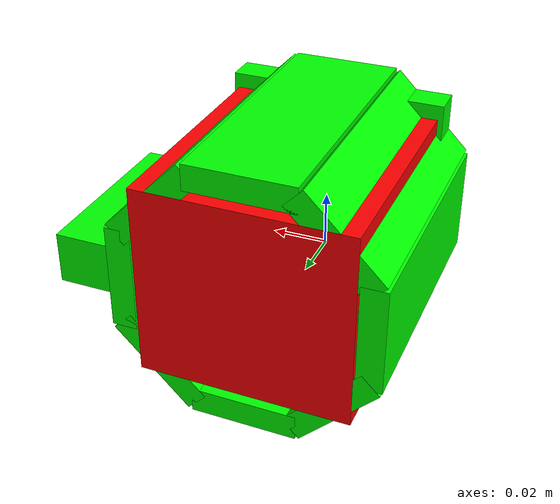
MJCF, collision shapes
<mujoco model="Mug_1">
  <compiler angle="radian" />
  <default>
    <default class="/">
      <default class="__VISUAL_MJT__">
        <geom contype="0" conaffinity="0" mass="0" />
      </default>
      <default class="__STRUCTURAL_MJT__">
        <geom contype="8" conaffinity="15" group="4" friction="0.9 0.9 0.001" solref="0.025" solimp="0.998 0.998" />
      </default>
      <default class="__DYNAMIC_MJT__">
        <geom conaffinity="15" group="4" friction="0.9 0.9 0.001" solref="0.025" solimp="0.998 0.998" />
      </default>
    </default>
  </default>
  <asset>
    <material name="material_Mug_Decals_Off_Mat" class="/" rgba="0.011765 0.011765 0.011765 1" metallic="0" roughness="0.15" clearcoat="0.05" clearcoatroughness="0" />
    <material name="material_Porcelain_Off_White_Mat" class="/" rgba="0.011765 0.011765 0.011765 1" metallic="0" roughness="0.15" clearcoat="0.05" clearcoatroughness="0" />
    <mesh name="Mug_1_mug_1_0" class="/" content_type="model/obj" file="assets/Mug_1_mug_1/Mug_1_mug_1_0.obj" />
    <mesh name="Mug_1_mug_1_1" class="/" content_type="model/obj" file="assets/Mug_1_mug_1/Mug_1_mug_1_1.obj" />
  </asset>
  <worldbody>
    <body name="Mug_1">
      <joint name="Mug_1_free" class="/" type="free" limited="false" actuatorfrclimited="false" damping="0.1" />
      <geom name="Mug_1_mug_1_0" class="__VISUAL_MJT__" type="mesh" material="material_Mug_Decals_Off_Mat" mesh="Mug_1_mug_1_0" pos="0.01154 -0.05182 0.00015" />
      <geom name="Mug_1_mug_1_1" class="__VISUAL_MJT__" type="mesh" material="material_Porcelain_Off_White_Mat" mesh="Mug_1_mug_1_1" pos="0.01154 -0.05182 0.00015" />
      <geom name="Mug_1_mug_1_PrimitiveCollider_0" class="__DYNAMIC_MJT__" size="0.0428719 0.0060202 0.0436388" pos="0.01154 -0.0457998 0.00015" quat="0 1 0 0" type="box" density="651" rgba="0 1 0 1" />
      <geom name="Mug_1_mug_1_PrimitiveCollider_1" class="__DYNAMIC_MJT__" size="0.0203641 0.0518174 0.00490658" pos="0.01154 -2.6e-06 -0.04635" quat="0 1 0 0" type="box" density="651" rgba="0 1 0 1" />
      <geom name="Mug_1_mug_1_PrimitiveCollider_2" class="__DYNAMIC_MJT__" size="0.0203641 0.0518174 0.00490658" pos="0.01154 -2.6e-06 0.04635" quat="0 1 0 0" type="box" density="651" rgba="0 1 0 1" />
      <geom name="Mug_1_mug_1_PrimitiveCollider_3" class="__DYNAMIC_MJT__" size="0.0203641 0.0518174 0.00490658" pos="-0.03481 -2.6e-06 -2.04e-07" quat="0 0.707107 0 -0.707107" type="box" density="651" rgba="0 1 0 1" />
      <geom name="Mug_1_mug_1_PrimitiveCollider_4" class="__DYNAMIC_MJT__" size="0.0203641 0.0518174 0.00490658" pos="0.05789 -2.6e-06 -2.04e-07" quat="0 0.707107 0 -0.707107" type="box" density="651" rgba="0 1 0 1" />
      <geom name="Mug_1_mug_1_PrimitiveCollider_5" class="__DYNAMIC_MJT__" size="0.0203641 0.0518174 0.00490658" pos="-0.0212344 -2.6e-06 0.0327738" quat="0 0.382684 0 -0.923879" type="box" density="651" rgba="0 1 0 1" />
      <geom name="Mug_1_mug_1_PrimitiveCollider_6" class="__DYNAMIC_MJT__" size="0.0203641 0.0518174 0.00490658" pos="0.0443144 -2.6e-06 -0.0327742" quat="0 0.382684 0 -0.923879" type="box" density="651" rgba="0 1 0 1" />
      <geom name="Mug_1_mug_1_PrimitiveCollider_7" class="__DYNAMIC_MJT__" size="0.0203642 0.0518174 0.00490658" pos="0.0443135 -2.6e-06 0.0327742" quat="0 -0.382683 0 -0.92388" type="box" density="651" rgba="0 1 0 1" />
      <geom name="Mug_1_mug_1_PrimitiveCollider_8" class="__DYNAMIC_MJT__" size="0.0203642 0.0518174 0.00490658" pos="-0.0212335 -2.6e-06 -0.0327747" quat="0 -0.382683 0 -0.92388" type="box" density="651" rgba="0 1 0 1" />
      <geom name="Mug_1_mug_1_PrimitiveCollider_9" class="__DYNAMIC_MJT__" size="0.00986246 0.0352154 0.0140872" pos="0.0717835 0.01266 -2.15e-07" quat="0 0.707107 0 -0.707107" type="box" density="651" rgba="0 1 0 1" />
      <site name="Mug_1_mug_1_ReceptacleCollider_0" class="/" pos="0.01154 0.0044158 0.00015" quat="0 1 0 0" size="0.040822 0.0474148 0.0378063" type="box" rgba="1 0 0 1" />
    </body>
  </worldbody>
  <keyframe>
    <key name="upright" qpos="0 0 0.057 0.707107 0.707107 0 0" />
  </keyframe>
</mujoco>
